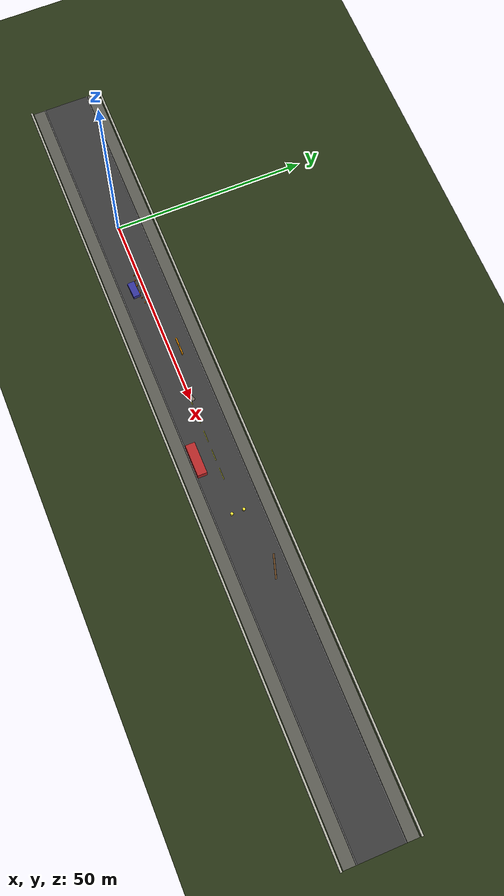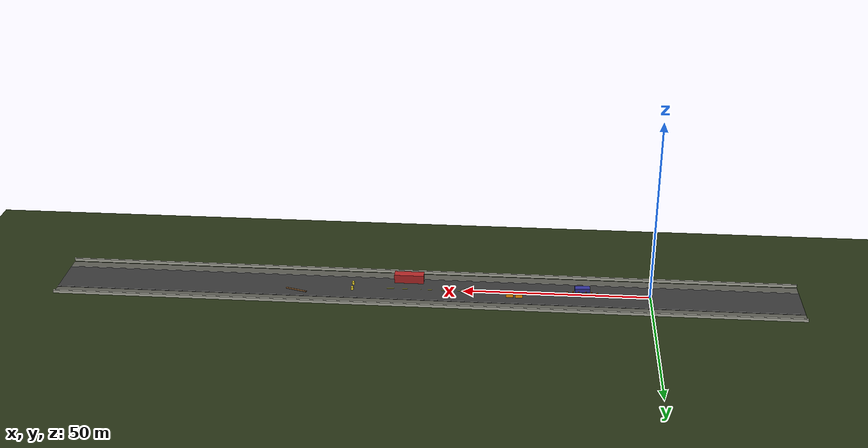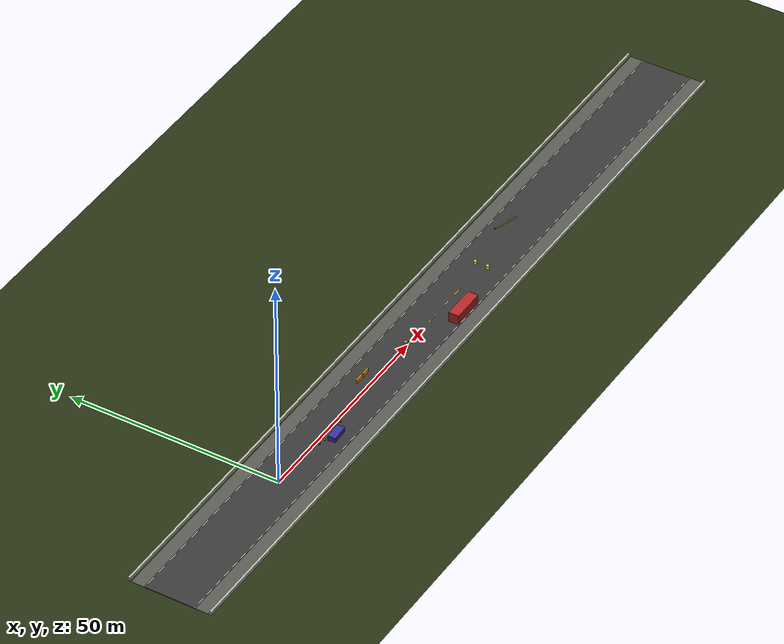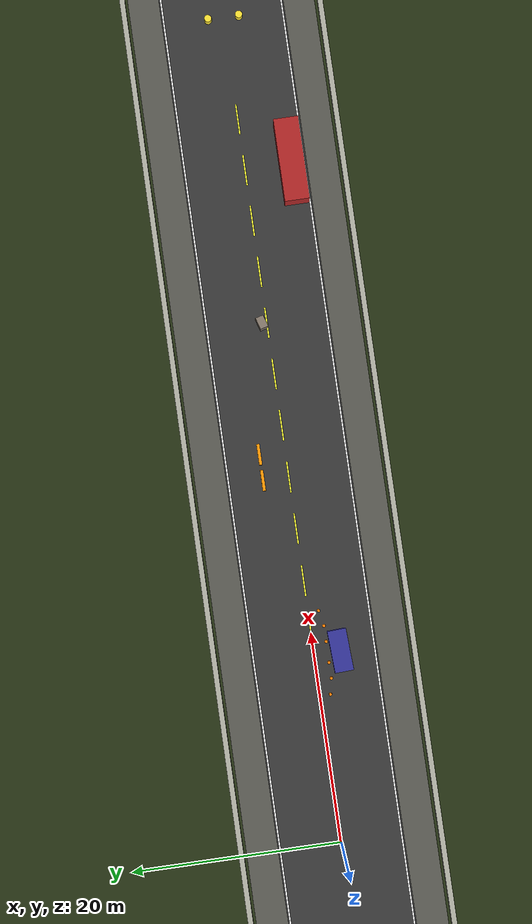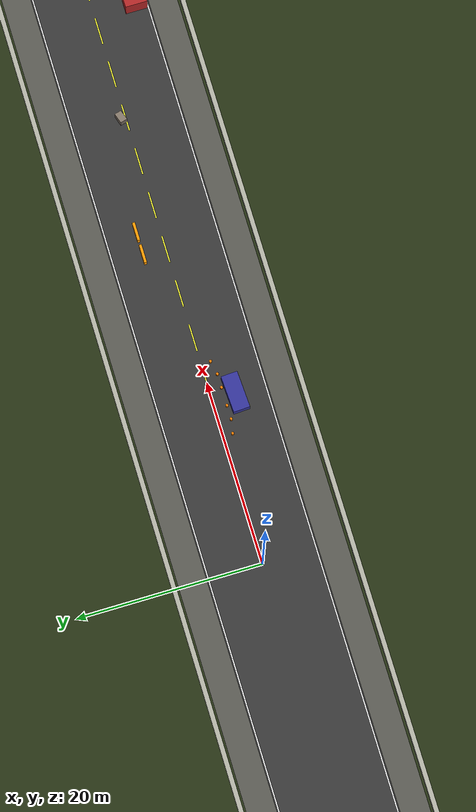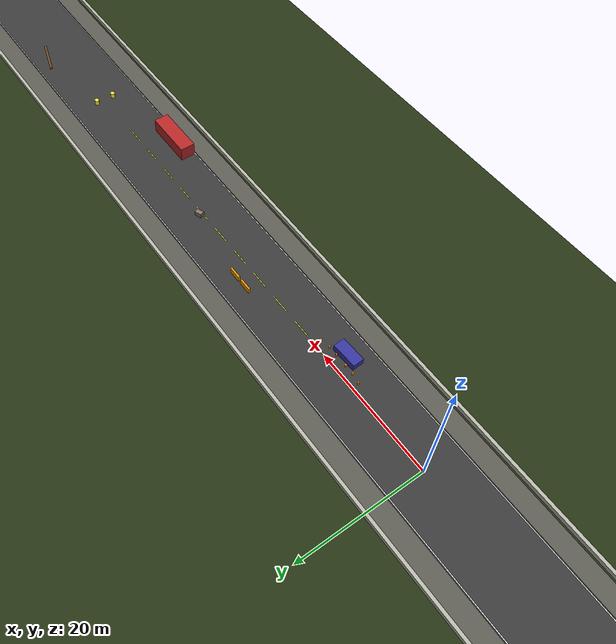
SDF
<sdf version="1.7">
 <world name="highway_world">
  <physics name="fast_physics" type="ignored">
   <max_step_size>0.004</max_step_size>
   <real_time_factor>1.0</real_time_factor>
  </physics>
  <plugin filename="ignition-gazebo-physics-system" name="ignition::gazebo::systems::Physics"/>
  <plugin filename="ignition-gazebo-user-commands-system" name="ignition::gazebo::systems::UserCommands"/>
  <plugin filename="ignition-gazebo-scene-broadcaster-system" name="ignition::gazebo::systems::SceneBroadcaster"/>
  <plugin filename="ignition-gazebo-sensors-system" name="ignition::gazebo::systems::Sensors">
   <render_engine>ogre2</render_engine>
  </plugin>
  <plugin filename="ignition-gazebo-contact-system" name="ignition::gazebo::systems::Contact"/>
  <scene>
   <ambient>0.8 0.8 0.8 1.0</ambient>
   <background>0.4 0.7 0.95 1.0</background>
   <shadows>false</shadows>
   <grid>false</grid>
  </scene>
  <light type="directional" name="sun">
   <cast_shadows>false</cast_shadows>
   <pose>0 0 50 0 0 0</pose>
   <diffuse>0.9 0.9 0.85 1</diffuse>
   <specular>0.3 0.3 0.3 1</specular>
   <direction>-0.5 0.1 -0.9</direction>
  </light>
  <model name="ground_plane">
   <static>true</static>
   <link name="link">
    <collision name="collision">
     <geometry><plane><normal>0 0 1</normal><size>400 100</size></plane></geometry>
    </collision>
    <visual name="visual">
     <geometry><plane><normal>0 0 1</normal><size>400 100</size></plane></geometry>
     <material><ambient>0.1 0.15 0.05 1</ambient><diffuse>0.15 0.2 0.08 1</diffuse></material>
    </visual>
   </link>
  </model>
  <model name="highway_road">
   <static>true</static>
   <pose>60 0 0 0 0 0</pose>
   <link name="link">
    <collision name="collision"><geometry><box><size>200 12 0.1</size></box></geometry></collision>
    <visual name="visual">
     <geometry><box><size>200 12 0.1</size></box></geometry>
     <material><ambient>0.18 0.18 0.18 1</ambient><diffuse>0.22 0.22 0.22 1</diffuse></material>
    </visual>
   </link>
  </model>
  <model name="shoulder_left">
   <static>true</static>
   <pose>60 7.5 0.001 0 0 0</pose>
   <link name="link">
    <visual name="visual">
     <geometry><box><size>200 3 0.001</size></box></geometry>
     <material><ambient>0.3 0.3 0.28 1</ambient><diffuse>0.35 0.35 0.32 1</diffuse></material>
    </visual>
   </link>
  </model>
  <model name="shoulder_right">
   <static>true</static>
   <pose>60 -7.5 0.001 0 0 0</pose>
   <link name="link">
    <visual name="visual">
     <geometry><box><size>200 3 0.001</size></box></geometry>
     <material><ambient>0.3 0.3 0.28 1</ambient><diffuse>0.35 0.35 0.32 1</diffuse></material>
    </visual>
   </link>
  </model>
  <model name="center_line_0">
   <static>true</static>
   <pose>5 0 0.052 0 0 0</pose>
   <link name="l">
    <visual name="v">
     <geometry><box><size>3 0.15 0.005</size></box></geometry>
     <material><ambient>0.9 0.9 0.1 1</ambient><diffuse>1 1 0.2 1</diffuse></material>
    </visual>
   </link>
  </model>
  <model name="center_line_1">
   <static>true</static>
   <pose>10 0 0.052 0 0 0</pose>
   <link name="l">
    <visual name="v">
     <geometry><box><size>3 0.15 0.005</size></box></geometry>
     <material><ambient>0.9 0.9 0.1 1</ambient><diffuse>1 1 0.2 1</diffuse></material>
    </visual>
   </link>
  </model>
  <model name="center_line_2">
   <static>true</static>
   <pose>15 0 0.052 0 0 0</pose>
   <link name="l">
    <visual name="v">
     <geometry><box><size>3 0.15 0.005</size></box></geometry>
     <material><ambient>0.9 0.9 0.1 1</ambient><diffuse>1 1 0.2 1</diffuse></material>
    </visual>
   </link>
  </model>
  <model name="center_line_3">
   <static>true</static>
   <pose>20 0 0.052 0 0 0</pose>
   <link name="l">
    <visual name="v">
     <geometry><box><size>3 0.15 0.005</size></box></geometry>
     <material><ambient>0.9 0.9 0.1 1</ambient><diffuse>1 1 0.2 1</diffuse></material>
    </visual>
   </link>
  </model>
  <model name="center_line_4">
   <static>true</static>
   <pose>25 0 0.052 0 0 0</pose>
   <link name="l">
    <visual name="v">
     <geometry><box><size>3 0.15 0.005</size></box></geometry>
     <material><ambient>0.9 0.9 0.1 1</ambient><diffuse>1 1 0.2 1</diffuse></material>
    </visual>
   </link>
  </model>
  <model name="center_line_5">
   <static>true</static>
   <pose>30 0 0.052 0 0 0</pose>
   <link name="l">
    <visual name="v">
     <geometry><box><size>3 0.15 0.005</size></box></geometry>
     <material><ambient>0.9 0.9 0.1 1</ambient><diffuse>1 1 0.2 1</diffuse></material>
    </visual>
   </link>
  </model>
  <model name="center_line_6">
   <static>true</static>
   <pose>35 0 0.052 0 0 0</pose>
   <link name="l">
    <visual name="v">
     <geometry><box><size>3 0.15 0.005</size></box></geometry>
     <material><ambient>0.9 0.9 0.1 1</ambient><diffuse>1 1 0.2 1</diffuse></material>
    </visual>
   </link>
  </model>
  <model name="center_line_7">
   <static>true</static>
   <pose>40 0 0.052 0 0 0</pose>
   <link name="l">
    <visual name="v">
     <geometry><box><size>3 0.15 0.005</size></box></geometry>
     <material><ambient>0.9 0.9 0.1 1</ambient><diffuse>1 1 0.2 1</diffuse></material>
    </visual>
   </link>
  </model>
  <model name="center_line_8">
   <static>true</static>
   <pose>45 0 0.052 0 0 0</pose>
   <link name="l">
    <visual name="v">
     <geometry><box><size>3 0.15 0.005</size></box></geometry>
     <material><ambient>0.9 0.9 0.1 1</ambient><diffuse>1 1 0.2 1</diffuse></material>
    </visual>
   </link>
  </model>
  <model name="center_line_9">
   <static>true</static>
   <pose>50 0 0.052 0 0 0</pose>
   <link name="l">
    <visual name="v">
     <geometry><box><size>3 0.15 0.005</size></box></geometry>
     <material><ambient>0.9 0.9 0.1 1</ambient><diffuse>1 1 0.2 1</diffuse></material>
    </visual>
   </link>
  </model>
  <model name="center_line_10">
   <static>true</static>
   <pose>55 0 0.052 0 0 0</pose>
   <link name="l">
    <visual name="v">
     <geometry><box><size>3 0.15 0.005</size></box></geometry>
     <material><ambient>0.9 0.9 0.1 1</ambient><diffuse>1 1 0.2 1</diffuse></material>
    </visual>
   </link>
  </model>
  <model name="center_line_11">
   <static>true</static>
   <pose>60 0 0.052 0 0 0</pose>
   <link name="l">
    <visual name="v">
     <geometry><box><size>3 0.15 0.005</size></box></geometry>
     <material><ambient>0.9 0.9 0.1 1</ambient><diffuse>1 1 0.2 1</diffuse></material>
    </visual>
   </link>
  </model>
  <model name="center_line_12">
   <static>true</static>
   <pose>65 0 0.052 0 0 0</pose>
   <link name="l">
    <visual name="v">
     <geometry><box><size>3 0.15 0.005</size></box></geometry>
     <material><ambient>0.9 0.9 0.1 1</ambient><diffuse>1 1 0.2 1</diffuse></material>
    </visual>
   </link>
  </model>
  <model name="center_line_13">
   <static>true</static>
   <pose>70 0 0.052 0 0 0</pose>
   <link name="l">
    <visual name="v">
     <geometry><box><size>3 0.15 0.005</size></box></geometry>
     <material><ambient>0.9 0.9 0.1 1</ambient><diffuse>1 1 0.2 1</diffuse></material>
    </visual>
   </link>
  </model>
  <model name="edge_left">
   <static>true</static>
   <pose>60 5.8 0.052 0 0 0</pose>
   <link name="l">
    <visual name="v">
     <geometry><box><size>200 0.15 0.005</size></box></geometry>
     <material><ambient>0.9 0.9 0.9 1</ambient><diffuse>1 1 1 1</diffuse></material>
    </visual>
   </link>
  </model>
  <model name="edge_right">
   <static>true</static>
   <pose>60 -5.8 0.052 0 0 0</pose>
   <link name="l">
    <visual name="v">
     <geometry><box><size>200 0.15 0.005</size></box></geometry>
     <material><ambient>0.9 0.9 0.9 1</ambient><diffuse>1 1 1 1</diffuse></material>
    </visual>
   </link>
  </model>
  <model name="barrier_left">
   <static>true</static>
   <pose>60 9.5 0.4 0 0 0</pose>
   <link name="link">
    <collision name="col"><geometry><box><size>200 0.5 0.8</size></box></geometry></collision>
    <visual name="vis">
     <geometry><box><size>200 0.5 0.8</size></box></geometry>
     <material><ambient>0.6 0.6 0.55 1</ambient><diffuse>0.7 0.7 0.65 1</diffuse></material>
    </visual>
   </link>
  </model>
  <model name="barrier_right">
   <static>true</static>
   <pose>60 -9.5 0.4 0 0 0</pose>
   <link name="link">
    <collision name="col"><geometry><box><size>200 0.5 0.8</size></box></geometry></collision>
    <visual name="vis">
     <geometry><box><size>200 0.5 0.8</size></box></geometry>
     <material><ambient>0.6 0.6 0.55 1</ambient><diffuse>0.7 0.7 0.65 1</diffuse></material>
    </visual>
   </link>
  </model>
  <model name="broken_car">
   <static>true</static>
   <pose>18.0 -2.5 0.6 0 0 0.05</pose>
   <link name="link">
    <collision name="col"><geometry><box><size>4.0 1.8 1.2</size></box></geometry></collision>
    <visual name="body">
     <geometry><box><size>4.0 1.8 1.2</size></box></geometry>
     <material><ambient>0.15 0.15 0.5 1</ambient><diffuse>0.2 0.2 0.6 1</diffuse></material>
    </visual>
   </link>
  </model>
  <model name="cone_1">
   <static>true</static>
   <pose>14.0 -1.0 0.25 0 0 0</pose>
   <link name="l">
    <collision name="c">
     <geometry><cylinder><radius>0.15</radius><length>0.5</length></cylinder></geometry>
    </collision>
    <visual name="v">
     <geometry><cylinder><radius>0.15</radius><length>0.5</length></cylinder></geometry>
     <material><ambient>0.9 0.4 0.0 1</ambient><diffuse>1.0 0.5 0.0 1</diffuse></material>
    </visual>
   </link>
  </model>
  <model name="cone_2">
   <static>true</static>
   <pose>15.5 -1.3 0.25 0 0 0</pose>
   <link name="l">
    <collision name="c">
     <geometry><cylinder><radius>0.15</radius><length>0.5</length></cylinder></geometry>
    </collision>
    <visual name="v">
     <geometry><cylinder><radius>0.15</radius><length>0.5</length></cylinder></geometry>
     <material><ambient>0.9 0.4 0.0 1</ambient><diffuse>1.0 0.5 0.0 1</diffuse></material>
    </visual>
   </link>
  </model>
  <model name="cone_3">
   <static>true</static>
   <pose>17.0 -1.3 0.25 0 0 0</pose>
   <link name="l">
    <collision name="c">
     <geometry><cylinder><radius>0.15</radius><length>0.5</length></cylinder></geometry>
    </collision>
    <visual name="v">
     <geometry><cylinder><radius>0.15</radius><length>0.5</length></cylinder></geometry>
     <material><ambient>0.9 0.4 0.0 1</ambient><diffuse>1.0 0.5 0.0 1</diffuse></material>
    </visual>
   </link>
  </model>
  <model name="cone_4">
   <static>true</static>
   <pose>19.0 -1.3 0.25 0 0 0</pose>
   <link name="l">
    <collision name="c">
     <geometry><cylinder><radius>0.15</radius><length>0.5</length></cylinder></geometry>
    </collision>
    <visual name="v">
     <geometry><cylinder><radius>0.15</radius><length>0.5</length></cylinder></geometry>
     <material><ambient>0.9 0.4 0.0 1</ambient><diffuse>1.0 0.5 0.0 1</diffuse></material>
    </visual>
   </link>
  </model>
  <model name="cone_5">
   <static>true</static>
   <pose>20.5 -1.3 0.25 0 0 0</pose>
   <link name="l">
    <collision name="c">
     <geometry><cylinder><radius>0.15</radius><length>0.5</length></cylinder></geometry>
    </collision>
    <visual name="v">
     <geometry><cylinder><radius>0.15</radius><length>0.5</length></cylinder></geometry>
     <material><ambient>0.9 0.4 0.0 1</ambient><diffuse>1.0 0.5 0.0 1</diffuse></material>
    </visual>
   </link>
  </model>
  <model name="cone_6">
   <static>true</static>
   <pose>22.0 -1.0 0.25 0 0 0</pose>
   <link name="l">
    <collision name="c">
     <geometry><cylinder><radius>0.15</radius><length>0.5</length></cylinder></geometry>
    </collision>
    <visual name="v">
     <geometry><cylinder><radius>0.15</radius><length>0.5</length></cylinder></geometry>
     <material><ambient>0.9 0.4 0.0 1</ambient><diffuse>1.0 0.5 0.0 1</diffuse></material>
    </visual>
   </link>
  </model>
  <model name="barricade_1">
   <static>true</static>
   <pose>35.0 2.5 0.5 0 0 0</pose>
   <link name="link">
    <collision name="col"><geometry><box><size>2.0 0.3 1.0</size></box></geometry></collision>
    <visual name="vis">
     <geometry><box><size>2.0 0.3 1.0</size></box></geometry>
     <material><ambient>0.9 0.5 0.0 1</ambient><diffuse>1.0 0.6 0.0 1</diffuse></material>
    </visual>
   </link>
  </model>
  <model name="barricade_2">
   <static>true</static>
   <pose>37.5 2.5 0.5 0 0 0</pose>
   <link name="link">
    <collision name="col"><geometry><box><size>2.0 0.3 1.0</size></box></geometry></collision>
    <visual name="vis">
     <geometry><box><size>2.0 0.3 1.0</size></box></geometry>
     <material><ambient>0.9 0.5 0.0 1</ambient><diffuse>1.0 0.6 0.0 1</diffuse></material>
    </visual>
   </link>
  </model>
  <model name="debris_rock">
   <static>true</static>
   <pose>50.0 0.5 0.35 0.1 0.15 0.3</pose>
   <link name="link">
    <collision name="col"><geometry><box><size>1.2 0.8 0.7</size></box></geometry></collision>
    <visual name="vis">
     <geometry><box><size>1.2 0.8 0.7</size></box></geometry>
     <material><ambient>0.4 0.35 0.3 1</ambient><diffuse>0.5 0.45 0.4 1</diffuse></material>
    </visual>
   </link>
  </model>
  <model name="parked_truck">
   <static>true</static>
   <pose>65.0 -4.5 1.2 0 0 0</pose>
   <link name="link">
    <collision name="col"><geometry><box><size>8.0 2.4 2.4</size></box></geometry></collision>
    <visual name="body">
     <geometry><box><size>8.0 2.4 2.4</size></box></geometry>
     <material><ambient>0.6 0.1 0.1 1</ambient><diffuse>0.7 0.15 0.15 1</diffuse></material>
    </visual>
   </link>
  </model>
  <model name="barrel_1">
   <static>true</static>
   <pose>80.0 1.5 0.45 0 0 0</pose>
   <link name="l">
    <collision name="c">
     <geometry><cylinder><radius>0.35</radius><length>0.9</length></cylinder></geometry>
    </collision>
    <visual name="v">
     <geometry><cylinder><radius>0.35</radius><length>0.9</length></cylinder></geometry>
     <material><ambient>0.9 0.8 0.1 1</ambient><diffuse>1.0 0.9 0.2 1</diffuse></material>
    </visual>
   </link>
  </model>
  <model name="barrel_2">
   <static>true</static>
   <pose>80.0 -1.5 0.45 0 0 0</pose>
   <link name="l">
    <collision name="c">
     <geometry><cylinder><radius>0.35</radius><length>0.9</length></cylinder></geometry>
    </collision>
    <visual name="v">
     <geometry><cylinder><radius>0.35</radius><length>0.9</length></cylinder></geometry>
     <material><ambient>0.9 0.8 0.1 1</ambient><diffuse>1.0 0.9 0.2 1</diffuse></material>
    </visual>
   </link>
  </model>
  <model name="fallen_tree">
   <static>true</static>
   <pose>95.0 3.0 0.2 0 0 -0.3</pose>
   <link name="link">
    <collision name="col">
     <geometry><cylinder><radius>0.2</radius><length>6.0</length></cylinder></geometry>
     <pose>0 0 0 0 1.5707 0</pose>
    </collision>
    <visual name="vis">
     <geometry><cylinder><radius>0.2</radius><length>6.0</length></cylinder></geometry>
     <pose>0 0 0 0 1.5707 0</pose>
     <material><ambient>0.35 0.25 0.1 1</ambient><diffuse>0.45 0.3 0.15 1</diffuse></material>
    </visual>
   </link>
  </model>
 </world>
</sdf>
